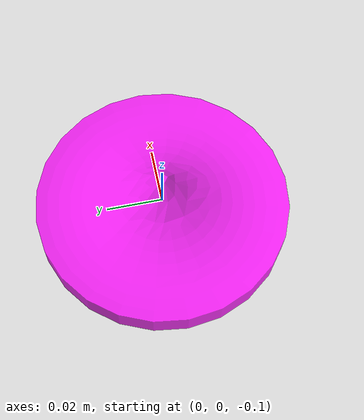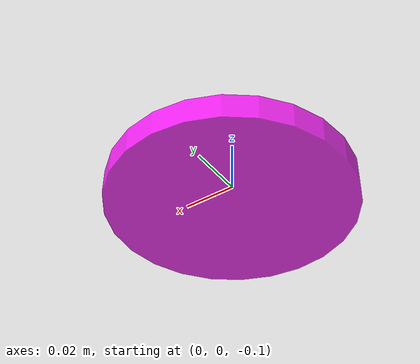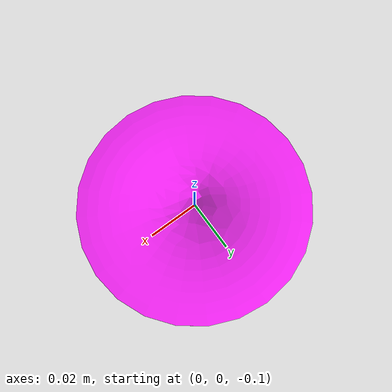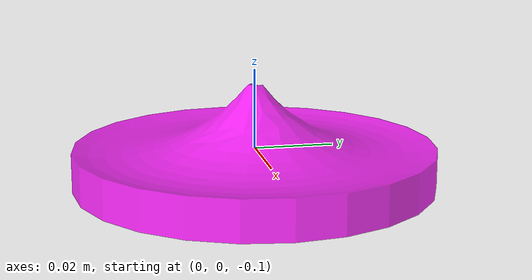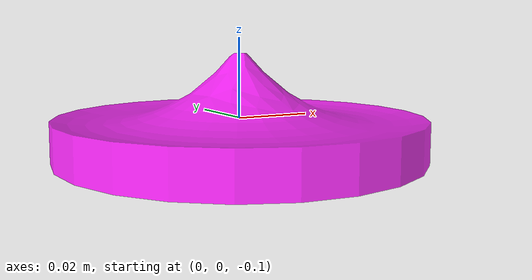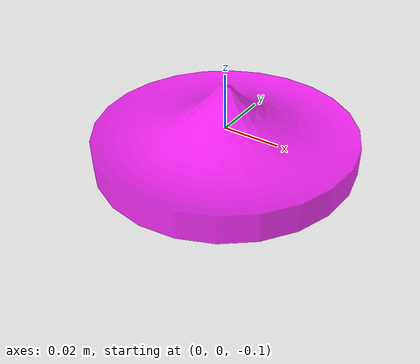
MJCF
<mujoco model="bottom_watertight_tiny">
  <default>
    <default group="2" type="mesh" contype="0" conaffinity="0">
      <geom group="2" type="mesh" contype="0" conaffinity="0"/>
    </default>
    <default group="3" type="mesh">
      <geom group="3" type="mesh"/>
    </default>
  </default>
  <asset>
    <mesh file="bottom_watertight_tiny.obj"/>
    <mesh file="bottom_watertight_tiny_collision_0.obj"/>
    <mesh file="bottom_watertight_tiny_collision_1.obj"/>
    <mesh file="bottom_watertight_tiny_collision_2.obj"/>
    <mesh file="bottom_watertight_tiny_collision_3.obj"/>
    <mesh file="bottom_watertight_tiny_collision_4.obj"/>
    <mesh file="bottom_watertight_tiny_collision_5.obj"/>
    <mesh file="bottom_watertight_tiny_collision_6.obj"/>
    <mesh file="bottom_watertight_tiny_collision_7.obj"/>
    <mesh file="bottom_watertight_tiny_collision_8.obj"/>
    <mesh file="bottom_watertight_tiny_collision_9.obj"/>
    <mesh file="bottom_watertight_tiny_collision_10.obj"/>
    <mesh file="bottom_watertight_tiny_collision_11.obj"/>
    <mesh file="bottom_watertight_tiny_collision_12.obj"/>
    <mesh file="bottom_watertight_tiny_collision_13.obj"/>
    <mesh file="bottom_watertight_tiny_collision_14.obj"/>
    <mesh file="bottom_watertight_tiny_collision_15.obj"/>
    <mesh file="bottom_watertight_tiny_collision_16.obj"/>
    <mesh file="bottom_watertight_tiny_collision_17.obj"/>
    <mesh file="bottom_watertight_tiny_collision_18.obj"/>
    <mesh file="bottom_watertight_tiny_collision_19.obj"/>
    <mesh file="bottom_watertight_tiny_collision_20.obj"/>
    <mesh file="bottom_watertight_tiny_collision_21.obj"/>
    <mesh file="bottom_watertight_tiny_collision_22.obj"/>
    <mesh file="bottom_watertight_tiny_collision_23.obj"/>
    <mesh file="bottom_watertight_tiny_collision_24.obj"/>
    <mesh file="bottom_watertight_tiny_collision_25.obj"/>
    <mesh file="bottom_watertight_tiny_collision_26.obj"/>
    <mesh file="bottom_watertight_tiny_collision_27.obj"/>
    <mesh file="bottom_watertight_tiny_collision_28.obj"/>
    <mesh file="bottom_watertight_tiny_collision_29.obj"/>
    <mesh file="bottom_watertight_tiny_collision_30.obj"/>
    <mesh file="bottom_watertight_tiny_collision_31.obj"/>
    <mesh file="bottom_watertight_tiny_collision_32.obj"/>
    <mesh file="bottom_watertight_tiny_collision_33.obj"/>
    <mesh file="bottom_watertight_tiny_collision_34.obj"/>
    <mesh file="bottom_watertight_tiny_collision_35.obj"/>
    <mesh file="bottom_watertight_tiny_collision_36.obj"/>
    <mesh file="bottom_watertight_tiny_collision_37.obj"/>
    <mesh file="bottom_watertight_tiny_collision_38.obj"/>
    <mesh file="bottom_watertight_tiny_collision_39.obj"/>
    <mesh file="bottom_watertight_tiny_collision_40.obj"/>
    <mesh file="bottom_watertight_tiny_collision_41.obj"/>
    <mesh file="bottom_watertight_tiny_collision_42.obj"/>
    <mesh file="bottom_watertight_tiny_collision_43.obj"/>
    <mesh file="bottom_watertight_tiny_collision_44.obj"/>
    <mesh file="bottom_watertight_tiny_collision_45.obj"/>
    <mesh file="bottom_watertight_tiny_collision_46.obj"/>
    <mesh file="bottom_watertight_tiny_collision_47.obj"/>
    <mesh file="bottom_watertight_tiny_collision_48.obj"/>
    <mesh file="bottom_watertight_tiny_collision_49.obj"/>
    <mesh file="bottom_watertight_tiny_collision_50.obj"/>
    <mesh file="bottom_watertight_tiny_collision_51.obj"/>
    <mesh file="bottom_watertight_tiny_collision_52.obj"/>
    <mesh file="bottom_watertight_tiny_collision_53.obj"/>
    <mesh file="bottom_watertight_tiny_collision_54.obj"/>
    <mesh file="bottom_watertight_tiny_collision_55.obj"/>
    <mesh file="bottom_watertight_tiny_collision_56.obj"/>
    <mesh file="bottom_watertight_tiny_collision_57.obj"/>
  </asset>
  <worldbody>
    <body name="bottom_watertight_tiny">
      <freejoint/>
      <geom mesh="bottom_watertight_tiny" group="2" type="mesh" rgba="1 0 1 0.8" contype="0" conaffinity="0"/>
      <geom mesh="bottom_watertight_tiny_collision_0" rgba="0.05888626482628945 0.5917306343087182 0.8385670733462185 1" group="3" type="mesh"/>
      <geom mesh="bottom_watertight_tiny_collision_1" rgba="0.2449406239166575 0.29489993110203794 0.35861364398102813 1" group="3" type="mesh"/>
      <geom mesh="bottom_watertight_tiny_collision_2" rgba="0.2155433728719055 0.164574596096964 0.13781916490055812 1" group="3" type="mesh"/>
      <geom mesh="bottom_watertight_tiny_collision_3" rgba="0.16346599820045882 0.2491879488525165 0.6199506937036886 1" group="3" type="mesh"/>
      <geom mesh="bottom_watertight_tiny_collision_4" rgba="0.11809067465465473 0.24488029596741834 0.1367751067562819 1" group="3" type="mesh"/>
      <geom mesh="bottom_watertight_tiny_collision_5" rgba="0.8343369127672556 0.6536584993422927 0.2996658510069167 1" group="3" type="mesh"/>
      <geom mesh="bottom_watertight_tiny_collision_6" rgba="0.7843035977786559 0.675777525903098 0.16051857021778737 1" group="3" type="mesh"/>
      <geom mesh="bottom_watertight_tiny_collision_7" rgba="0.554919006097797 0.5439561186325981 0.11900245130296672 1" group="3" type="mesh"/>
      <geom mesh="bottom_watertight_tiny_collision_8" rgba="0.28201191593881325 0.18717171164109647 0.4109349843105218 1" group="3" type="mesh"/>
      <geom mesh="bottom_watertight_tiny_collision_9" rgba="0.6693711835603685 0.7406515486643912 0.5726692915684845 1" group="3" type="mesh"/>
      <geom mesh="bottom_watertight_tiny_collision_10" rgba="0.6627890135589474 0.2664632700641769 0.6273202316478409 1" group="3" type="mesh"/>
      <geom mesh="bottom_watertight_tiny_collision_11" rgba="0.418756773857449 0.1241223112215023 0.36762510162751927 1" group="3" type="mesh"/>
      <geom mesh="bottom_watertight_tiny_collision_12" rgba="0.645740826070358 0.4990865293584944 0.47050496630256955 1" group="3" type="mesh"/>
      <geom mesh="bottom_watertight_tiny_collision_13" rgba="0.7465466818219773 0.022827023114066036 0.24836825498325488 1" group="3" type="mesh"/>
      <geom mesh="bottom_watertight_tiny_collision_14" rgba="0.9723583898611909 0.35425316409657814 0.7010858742705453 1" group="3" type="mesh"/>
      <geom mesh="bottom_watertight_tiny_collision_15" rgba="0.7859618441471931 0.2747174805959721 0.2556270437227658 1" group="3" type="mesh"/>
      <geom mesh="bottom_watertight_tiny_collision_16" rgba="0.26877712847228363 0.7906056437890286 0.8055182402860781 1" group="3" type="mesh"/>
      <geom mesh="bottom_watertight_tiny_collision_17" rgba="0.7908215761693221 0.3116378660577719 0.1557553478314303 1" group="3" type="mesh"/>
      <geom mesh="bottom_watertight_tiny_collision_18" rgba="0.8464252651717116 0.7323355156222209 0.36272128414427307 1" group="3" type="mesh"/>
      <geom mesh="bottom_watertight_tiny_collision_19" rgba="0.45358612267607834 0.27522366691453026 0.5604373575216713 1" group="3" type="mesh"/>
      <geom mesh="bottom_watertight_tiny_collision_20" rgba="0.7367007568020187 0.9317487986796203 0.9996287600986311 1" group="3" type="mesh"/>
      <geom mesh="bottom_watertight_tiny_collision_21" rgba="0.5946258514293119 0.9118415265862276 0.35956131438833516 1" group="3" type="mesh"/>
      <geom mesh="bottom_watertight_tiny_collision_22" rgba="0.696875177606181 0.8317764475290179 0.5302512347199723 1" group="3" type="mesh"/>
      <geom mesh="bottom_watertight_tiny_collision_23" rgba="0.8139295476326606 0.5577513450783741 0.5555365353986371 1" group="3" type="mesh"/>
      <geom mesh="bottom_watertight_tiny_collision_24" rgba="0.1297678403862672 0.8616161341016282 0.47426155825636307 1" group="3" type="mesh"/>
      <geom mesh="bottom_watertight_tiny_collision_25" rgba="0.6416475181386427 0.051658667448371776 0.4092994214339444 1" group="3" type="mesh"/>
      <geom mesh="bottom_watertight_tiny_collision_26" rgba="0.020920415938670778 0.3108095377468475 0.370688557378397 1" group="3" type="mesh"/>
      <geom mesh="bottom_watertight_tiny_collision_27" rgba="0.7760712816102129 0.18965049463875028 0.2663718224243017 1" group="3" type="mesh"/>
      <geom mesh="bottom_watertight_tiny_collision_28" rgba="0.31191670397617455 0.16107516540822353 0.5462003677258148 1" group="3" type="mesh"/>
      <geom mesh="bottom_watertight_tiny_collision_29" rgba="0.3813875139279457 0.34238373425965174 0.8331361972370475 1" group="3" type="mesh"/>
      <geom mesh="bottom_watertight_tiny_collision_30" rgba="0.8461472889263478 0.620072998470362 0.9058551087404091 1" group="3" type="mesh"/>
      <geom mesh="bottom_watertight_tiny_collision_31" rgba="0.40811335571628626 0.39422821364901295 0.22066476578716343 1" group="3" type="mesh"/>
      <geom mesh="bottom_watertight_tiny_collision_32" rgba="0.1860827344013819 0.511313047814385 0.39835575406082746 1" group="3" type="mesh"/>
      <geom mesh="bottom_watertight_tiny_collision_33" rgba="0.25398909041369666 0.7574898612753918 0.3027726721631684 1" group="3" type="mesh"/>
      <geom mesh="bottom_watertight_tiny_collision_34" rgba="0.6488012932327938 0.5564611783102705 0.14556950942111646 1" group="3" type="mesh"/>
      <geom mesh="bottom_watertight_tiny_collision_35" rgba="0.9547345042029519 0.586542090362657 0.3093628603163112 1" group="3" type="mesh"/>
      <geom mesh="bottom_watertight_tiny_collision_36" rgba="0.45588625873753574 0.6791518931698971 0.5673365845623906 1" group="3" type="mesh"/>
      <geom mesh="bottom_watertight_tiny_collision_37" rgba="0.9927290486206727 0.29258135777744476 0.9826791945188504 1" group="3" type="mesh"/>
      <geom mesh="bottom_watertight_tiny_collision_38" rgba="0.8322658881956649 0.36122551855861385 0.07379490079642903 1" group="3" type="mesh"/>
      <geom mesh="bottom_watertight_tiny_collision_39" rgba="0.06254779241059116 0.8822908137472243 0.9954438161793145 1" group="3" type="mesh"/>
      <geom mesh="bottom_watertight_tiny_collision_40" rgba="0.8301435593026538 0.6698511453942401 0.33431886939385036 1" group="3" type="mesh"/>
      <geom mesh="bottom_watertight_tiny_collision_41" rgba="0.5145746249609118 0.40270200310426296 0.31049645132914694 1" group="3" type="mesh"/>
      <geom mesh="bottom_watertight_tiny_collision_42" rgba="0.53981112924534 0.025757993134733703 0.09195382466085988 1" group="3" type="mesh"/>
      <geom mesh="bottom_watertight_tiny_collision_43" rgba="0.35686715659162227 0.7482195566184819 0.31344739060631854 1" group="3" type="mesh"/>
      <geom mesh="bottom_watertight_tiny_collision_44" rgba="0.47625208454137447 0.5614764565835676 0.43895448272674453 1" group="3" type="mesh"/>
      <geom mesh="bottom_watertight_tiny_collision_45" rgba="0.8624586151223156 0.8207730021869232 0.8898274401046834 1" group="3" type="mesh"/>
      <geom mesh="bottom_watertight_tiny_collision_46" rgba="0.3700234055303353 0.766636652381208 0.9854852648296859 1" group="3" type="mesh"/>
      <geom mesh="bottom_watertight_tiny_collision_47" rgba="0.9251940278834027 0.24574572678005435 0.7729037903238477 1" group="3" type="mesh"/>
      <geom mesh="bottom_watertight_tiny_collision_48" rgba="0.03948748393107904 0.46293192807174843 0.26519657214280756 1" group="3" type="mesh"/>
      <geom mesh="bottom_watertight_tiny_collision_49" rgba="0.7706351074747795 0.2835926651703393 0.21807398074646978 1" group="3" type="mesh"/>
      <geom mesh="bottom_watertight_tiny_collision_50" rgba="0.5121077671520734 0.553895332819192 0.4343648776084563 1" group="3" type="mesh"/>
      <geom mesh="bottom_watertight_tiny_collision_51" rgba="0.5286728395500767 0.8192308756871332 0.09168837794620621 1" group="3" type="mesh"/>
      <geom mesh="bottom_watertight_tiny_collision_52" rgba="0.07173729760350278 0.05476763206163349 0.34967618773574816 1" group="3" type="mesh"/>
      <geom mesh="bottom_watertight_tiny_collision_53" rgba="0.2509824061938287 0.8920197361193378 0.020776877205048172 1" group="3" type="mesh"/>
      <geom mesh="bottom_watertight_tiny_collision_54" rgba="0.523529492611403 0.20626102097660048 0.3823484668554342 1" group="3" type="mesh"/>
      <geom mesh="bottom_watertight_tiny_collision_55" rgba="0.6180565117478044 0.1974222376183261 0.6934857520603749 1" group="3" type="mesh"/>
      <geom mesh="bottom_watertight_tiny_collision_56" rgba="0.873115428755072 0.435386727037012 0.007336109538079949 1" group="3" type="mesh"/>
      <geom mesh="bottom_watertight_tiny_collision_57" rgba="0.9943847269822242 0.26205525179620626 0.12448274447584495 1" group="3" type="mesh"/>
    </body>
  </worldbody>
</mujoco>
